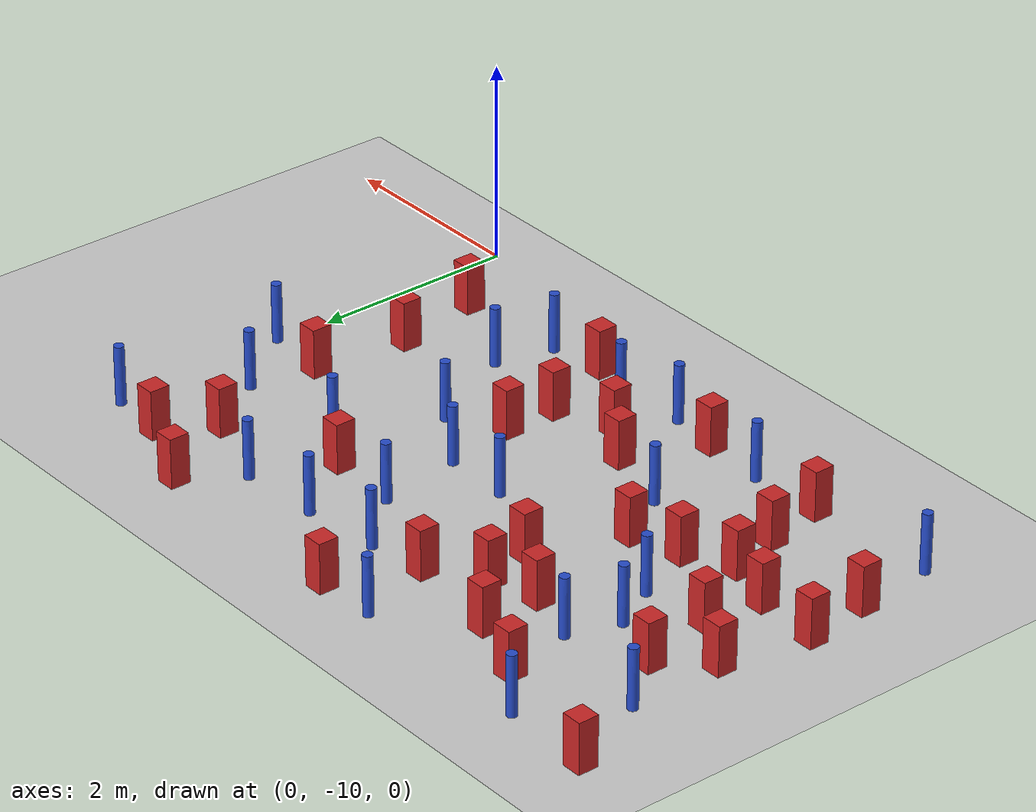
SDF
<sdf version="1.6">
 <world name="default">
  <model name="ground_plane">
   <static>1</static>
   <link name="link">
    <collision name="collision">
     <geometry><plane><normal>0 0 1</normal><size>100 100</size></plane></geometry>
     <surface><friction><ode><mu>100</mu><mu2>50</mu2></ode></friction></surface>
    </collision>
    <visual name="visual">
     <cast_shadows>0</cast_shadows>
     <geometry><plane><normal>0 0 1</normal><size>100 100</size></plane></geometry>
     <material>
      <ambient>1.0 1.0 1.0 1.0</ambient>
      <diffuse>0.8 0.8 0.8 1.0</diffuse>
      <specular>0.01 0.01 0.01 1.000000</specular>
     </material>
    </visual>
   </link>
  </model>
  <model name="pole_obstacle1">
   <static>true</static>
   <pose>-1.74383481891 -5.81777076691 -9.47619616065e-06 5.49618799737e-07 2.36310414061e-07 -1.550905348e-07</pose>
   <link name="link">
    <pose>0 0 0.3 0 -0 0</pose>
    <inertial>
     <mass>1</mass>
     <inertia><ixx>0.145833</ixx><ixy>0</ixy><ixz>0</ixz><iyy>0.145833</iyy><iyz>0</iyz><izz>0.125</izz></inertia>
    </inertial>
    <collision name="collision">
     <geometry><cylinder><radius>0.05</radius><length>.6</length></cylinder></geometry>
    </collision>
    <visual name="visual">
     <geometry><cylinder><radius>0.05</radius><length>.6</length></cylinder></geometry>
     <material>
      <script><name>Gazebo/Blue</name><uri>file://media/materials/scripts/gazebo.material</uri></script>
     </material>
    </visual>
   </link>
  </model>
  <model name="square_post_obstacle0">
   <static>true</static>
   <pose>-6.75557318525 -7.88863888471 -6.11067671241e-07 -5.50515727128e-06 -8.79689657224e-07 2.37013304536e-05</pose>
   <link name="link">
    <pose>0 0 0.25 0 -0 0</pose>
    <inertial>
     <mass>100</mass>
     <inertia>
      <ixx>0.166667</ixx>
      <ixy>0</ixy>
      <ixz>0</ixz>
      <iyy>0.166667</iyy>
      <iyz>0</iyz>
      <izz>0.166667</izz>
     </inertia>
    </inertial>
    <collision name="collision"><geometry><box><size>.2 .2 .5</size></box></geometry></collision>
    <visual name="visual">
     <geometry><box><size>.2 .2 .5</size></box></geometry>
     <material>
      <script><name>Gazebo/Red</name><uri>file://media/materials/scripts/gazebo.material</uri></script>
     </material>
    </visual>
   </link>
  </model>
  <model name="pole_obstacle13">
   <static>true</static>
   <pose>-2.6742493743 -7.34877524434 -9.47619616065e-06 5.49618799738e-07 2.3631041406e-07 -1.55090534801e-07</pose>
   <link name="link">
    <pose>0 0 0.3 0 -0 0</pose>
    <inertial>
     <mass>1</mass>
     <inertia><ixx>0.145833</ixx><ixy>0</ixy><ixz>0</ixz><iyy>0.145833</iyy><iyz>0</iyz><izz>0.125</izz></inertia>
    </inertial>
    <collision name="collision">
     <geometry><cylinder><radius>0.05</radius><length>.6</length></cylinder></geometry>
    </collision>
    <visual name="visual">
     <geometry><cylinder><radius>0.05</radius><length>.6</length></cylinder></geometry>
     <material>
      <script><name>Gazebo/Blue</name><uri>file://media/materials/scripts/gazebo.material</uri></script>
     </material>
    </visual>
   </link>
  </model>
  <model name="pole_obstacle17">
   <static>true</static>
   <pose>-6.03865940398 -5.28172877033 -9.47619616065e-06 5.49618799737e-07 2.36310414037e-07 -1.55090534814e-07</pose>
   <link name="link">
    <pose>0 0 0.3 0 -0 0</pose>
    <inertial>
     <mass>1</mass>
     <inertia><ixx>0.145833</ixx><ixy>0</ixy><ixz>0</ixz><iyy>0.145833</iyy><iyz>0</iyz><izz>0.125</izz></inertia>
    </inertial>
    <collision name="collision">
     <geometry><cylinder><radius>0.05</radius><length>.6</length></cylinder></geometry>
    </collision>
    <visual name="visual">
     <geometry><cylinder><radius>0.05</radius><length>.6</length></cylinder></geometry>
     <material>
      <script><name>Gazebo/Blue</name><uri>file://media/materials/scripts/gazebo.material</uri></script>
     </material>
    </visual>
   </link>
  </model>
  <model name="pole_obstacle19">
   <static>true</static>
   <pose>-2.04132399361 -7.76574243721 -9.47619616065e-06 5.49618799737e-07 2.36310414067e-07 -1.55090534796e-07</pose>
   <link name="link">
    <pose>0 0 0.3 0 -0 0</pose>
    <inertial>
     <mass>1</mass>
     <inertia><ixx>0.145833</ixx><ixy>0</ixy><ixz>0</ixz><iyy>0.145833</iyy><iyz>0</iyz><izz>0.125</izz></inertia>
    </inertial>
    <collision name="collision">
     <geometry><cylinder><radius>0.05</radius><length>.6</length></cylinder></geometry>
    </collision>
    <visual name="visual">
     <geometry><cylinder><radius>0.05</radius><length>.6</length></cylinder></geometry>
     <material>
      <script><name>Gazebo/Blue</name><uri>file://media/materials/scripts/gazebo.material</uri></script>
     </material>
    </visual>
   </link>
  </model>
  <model name="pole_obstacle27">
   <static>true</static>
   <pose>-6.57801317529 -9.34127298016 -9.47619616065e-06 5.49618799737e-07 2.36310414065e-07 -1.55090534796e-07</pose>
   <link name="link">
    <pose>0 0 0.3 0 -0 0</pose>
    <inertial>
     <mass>1</mass>
     <inertia><ixx>0.145833</ixx><ixy>0</ixy><ixz>0</ixz><iyy>0.145833</iyy><iyz>0</iyz><izz>0.125</izz></inertia>
    </inertial>
    <collision name="collision">
     <geometry><cylinder><radius>0.05</radius><length>.6</length></cylinder></geometry>
    </collision>
    <visual name="visual">
     <geometry><cylinder><radius>0.05</radius><length>.6</length></cylinder></geometry>
     <material>
      <script><name>Gazebo/Blue</name><uri>file://media/materials/scripts/gazebo.material</uri></script>
     </material>
    </visual>
   </link>
  </model>
  <model name="square_post_obstacle19">
   <static>true</static>
   <pose>-4.38879431666 -6.38480278484 -6.11067671241e-07 -5.50515727128e-06 -8.79689657224e-07 2.37013304536e-05</pose>
   <link name="link">
    <pose>0 0 0.25 0 -0 0</pose>
    <inertial>
     <mass>100</mass>
     <inertia>
      <ixx>0.166667</ixx>
      <ixy>0</ixy>
      <ixz>0</ixz>
      <iyy>0.166667</iyy>
      <iyz>0</iyz>
      <izz>0.166667</izz>
     </inertia>
    </inertial>
    <collision name="collision"><geometry><box><size>.2 .2 .5</size></box></geometry></collision>
    <visual name="visual">
     <geometry><box><size>.2 .2 .5</size></box></geometry>
     <material>
      <script><name>Gazebo/Red</name><uri>file://media/materials/scripts/gazebo.material</uri></script>
     </material>
    </visual>
   </link>
  </model>
  <model name="square_post_obstacle24">
   <static>true</static>
   <pose>-0.602056874065 -9.18775870328 -6.11067671241e-07 -5.50515727128e-06 -8.79689657224e-07 2.37013304536e-05</pose>
   <link name="link">
    <pose>0 0 0.25 0 -0 0</pose>
    <inertial>
     <mass>100</mass>
     <inertia>
      <ixx>0.166667</ixx>
      <ixy>0</ixy>
      <ixz>0</ixz>
      <iyy>0.166667</iyy>
      <iyz>0</iyz>
      <izz>0.166667</izz>
     </inertia>
    </inertial>
    <collision name="collision"><geometry><box><size>.2 .2 .5</size></box></geometry></collision>
    <visual name="visual">
     <geometry><box><size>.2 .2 .5</size></box></geometry>
     <material>
      <script><name>Gazebo/Red</name><uri>file://media/materials/scripts/gazebo.material</uri></script>
     </material>
    </visual>
   </link>
  </model>
  <model name="pole_obstacle33">
   <static>true</static>
   <pose>-4.1364872757 -5.28533609026 -9.47619616065e-06 5.49618799737e-07 2.36310414037e-07 -1.55090534814e-07</pose>
   <link name="link">
    <pose>0 0 0.3 0 -0 0</pose>
    <inertial>
     <mass>1</mass>
     <inertia><ixx>0.145833</ixx><ixy>0</ixy><ixz>0</ixz><iyy>0.145833</iyy><iyz>0</iyz><izz>0.125</izz></inertia>
    </inertial>
    <collision name="collision">
     <geometry><cylinder><radius>0.05</radius><length>.6</length></cylinder></geometry>
    </collision>
    <visual name="visual">
     <geometry><cylinder><radius>0.05</radius><length>.6</length></cylinder></geometry>
     <material>
      <script><name>Gazebo/Blue</name><uri>file://media/materials/scripts/gazebo.material</uri></script>
     </material>
    </visual>
   </link>
  </model>
  <model name="pole_obstacle35">
   <static>true</static>
   <pose>-5.42017262382 -6.34339641514 -9.47619616065e-06 5.49618799737e-07 2.36310414037e-07 -1.55090534814e-07</pose>
   <link name="link">
    <pose>0 0 0.3 0 -0 0</pose>
    <inertial>
     <mass>1</mass>
     <inertia><ixx>0.145833</ixx><ixy>0</ixy><ixz>0</ixz><iyy>0.145833</iyy><iyz>0</iyz><izz>0.125</izz></inertia>
    </inertial>
    <collision name="collision">
     <geometry><cylinder><radius>0.05</radius><length>.6</length></cylinder></geometry>
    </collision>
    <visual name="visual">
     <geometry><cylinder><radius>0.05</radius><length>.6</length></cylinder></geometry>
     <material>
      <script><name>Gazebo/Blue</name><uri>file://media/materials/scripts/gazebo.material</uri></script>
     </material>
    </visual>
   </link>
  </model>
  <model name="pole_obstacle42">
   <static>true</static>
   <pose>-3.34360579374 -7.33530990553 -9.4761961606e-06 5.49618799729e-07 2.36310414006e-07 -1.55090534822e-07</pose>
   <link name="link">
    <pose>0 0 0.3 0 -0 0</pose>
    <inertial>
     <mass>1</mass>
     <inertia><ixx>0.145833</ixx><ixy>0</ixy><ixz>0</ixz><iyy>0.145833</iyy><iyz>0</iyz><izz>0.125</izz></inertia>
    </inertial>
    <collision name="collision">
     <geometry><cylinder><radius>0.05</radius><length>.6</length></cylinder></geometry>
    </collision>
    <visual name="visual">
     <geometry><cylinder><radius>0.05</radius><length>.6</length></cylinder></geometry>
     <material>
      <script><name>Gazebo/Blue</name><uri>file://media/materials/scripts/gazebo.material</uri></script>
     </material>
    </visual>
   </link>
  </model>
  <model name="square_post_obstacle32">
   <static>true</static>
   <pose>-6.0216094515 -7.36212291697 -6.11067671241e-07 -5.50515727128e-06 -8.79689657224e-07 2.37013304536e-05</pose>
   <link name="link">
    <pose>0 0 0.25 0 -0 0</pose>
    <inertial>
     <mass>100</mass>
     <inertia>
      <ixx>0.166667</ixx>
      <ixy>0</ixy>
      <ixz>0</ixz>
      <iyy>0.166667</iyy>
      <iyz>0</iyz>
      <izz>0.166667</izz>
     </inertia>
    </inertial>
    <collision name="collision"><geometry><box><size>.2 .2 .5</size></box></geometry></collision>
    <visual name="visual">
     <geometry><box><size>.2 .2 .5</size></box></geometry>
     <material>
      <script><name>Gazebo/Red</name><uri>file://media/materials/scripts/gazebo.material</uri></script>
     </material>
    </visual>
   </link>
  </model>
  <model name="square_post_obstacle40">
   <static>true</static>
   <pose>-6.66335630523 -8.54796454242 -6.11067671241e-07 -5.50515727128e-06 -8.79689657224e-07 2.37013304536e-05</pose>
   <link name="link">
    <pose>0 0 0.25 0 -0 0</pose>
    <inertial>
     <mass>100</mass>
     <inertia>
      <ixx>0.166667</ixx>
      <ixy>0</ixy>
      <ixz>0</ixz>
      <iyy>0.166667</iyy>
      <iyz>0</iyz>
      <izz>0.166667</izz>
     </inertia>
    </inertial>
    <collision name="collision"><geometry><box><size>.2 .2 .5</size></box></geometry></collision>
    <visual name="visual">
     <geometry><box><size>.2 .2 .5</size></box></geometry>
     <material>
      <script><name>Gazebo/Red</name><uri>file://media/materials/scripts/gazebo.material</uri></script>
     </material>
    </visual>
   </link>
  </model>
  <model name="pole_obstacle54">
   <static>true</static>
   <pose>0.0282269037249 -7.44668861009 -9.47619616065e-06 5.49618799737e-07 2.36310414066e-07 -1.55090534797e-07</pose>
   <link name="link">
    <pose>0 0 0.3 0 -0 0</pose>
    <inertial>
     <mass>1</mass>
     <inertia><ixx>0.145833</ixx><ixy>0</ixy><ixz>0</ixz><iyy>0.145833</iyy><iyz>0</iyz><izz>0.125</izz></inertia>
    </inertial>
    <collision name="collision">
     <geometry><cylinder><radius>0.05</radius><length>.6</length></cylinder></geometry>
    </collision>
    <visual name="visual">
     <geometry><cylinder><radius>0.05</radius><length>.6</length></cylinder></geometry>
     <material>
      <script><name>Gazebo/Blue</name><uri>file://media/materials/scripts/gazebo.material</uri></script>
     </material>
    </visual>
   </link>
  </model>
  <model name="square_post_obstacle47">
   <static>true</static>
   <pose>-3.9117878996 -6.03753070838 -6.11067671241e-07 -5.50515727128e-06 -8.79689657224e-07 2.37013304536e-05</pose>
   <link name="link">
    <pose>0 0 0.25 0 -0 0</pose>
    <inertial>
     <mass>100</mass>
     <inertia>
      <ixx>0.166667</ixx>
      <ixy>0</ixy>
      <ixz>0</ixz>
      <iyy>0.166667</iyy>
      <iyz>0</iyz>
      <izz>0.166667</izz>
     </inertia>
    </inertial>
    <collision name="collision"><geometry><box><size>.2 .2 .5</size></box></geometry></collision>
    <visual name="visual">
     <geometry><box><size>.2 .2 .5</size></box></geometry>
     <material>
      <script><name>Gazebo/Red</name><uri>file://media/materials/scripts/gazebo.material</uri></script>
     </material>
    </visual>
   </link>
  </model>
  <model name="square_post_obstacle53">
   <static>true</static>
   <pose>-2.27572572303 -9.36772776273 -6.11067671241e-07 -5.50515727128e-06 -8.79689657224e-07 2.37013304536e-05</pose>
   <link name="link">
    <pose>0 0 0.25 0 -0 0</pose>
    <inertial>
     <mass>100</mass>
     <inertia>
      <ixx>0.166667</ixx>
      <ixy>0</ixy>
      <ixz>0</ixz>
      <iyy>0.166667</iyy>
      <iyz>0</iyz>
      <izz>0.166667</izz>
     </inertia>
    </inertial>
    <collision name="collision"><geometry><box><size>.2 .2 .5</size></box></geometry></collision>
    <visual name="visual">
     <geometry><box><size>.2 .2 .5</size></box></geometry>
     <material>
      <script><name>Gazebo/Red</name><uri>file://media/materials/scripts/gazebo.material</uri></script>
     </material>
    </visual>
   </link>
  </model>
  <model name="square_post_obstacle58">
   <static>true</static>
   <pose>-5.58530225095 -8.10684089101 -6.11067671241e-07 -5.50515727128e-06 -8.79689657224e-07 2.37013304536e-05</pose>
   <link name="link">
    <pose>0 0 0.25 0 -0 0</pose>
    <inertial>
     <mass>100</mass>
     <inertia>
      <ixx>0.166667</ixx>
      <ixy>0</ixy>
      <ixz>0</ixz>
      <iyy>0.166667</iyy>
      <iyz>0</iyz>
      <izz>0.166667</izz>
     </inertia>
    </inertial>
    <collision name="collision"><geometry><box><size>.2 .2 .5</size></box></geometry></collision>
    <visual name="visual">
     <geometry><box><size>.2 .2 .5</size></box></geometry>
     <material>
      <script><name>Gazebo/Red</name><uri>file://media/materials/scripts/gazebo.material</uri></script>
     </material>
    </visual>
   </link>
  </model>
  <model name="pole_obstacle69">
   <static>true</static>
   <pose>-1.70387934588 -9.2942486309 -9.47619616065e-06 5.49618799737e-07 2.36310414046e-07 -1.55090534809e-07</pose>
   <link name="link">
    <pose>0 0 0.3 0 -0 0</pose>
    <inertial>
     <mass>1</mass>
     <inertia><ixx>0.145833</ixx><ixy>0</ixy><ixz>0</ixz><iyy>0.145833</iyy><iyz>0</iyz><izz>0.125</izz></inertia>
    </inertial>
    <collision name="collision">
     <geometry><cylinder><radius>0.05</radius><length>.6</length></cylinder></geometry>
    </collision>
    <visual name="visual">
     <geometry><cylinder><radius>0.05</radius><length>.6</length></cylinder></geometry>
     <material>
      <script><name>Gazebo/Blue</name><uri>file://media/materials/scripts/gazebo.material</uri></script>
     </material>
    </visual>
   </link>
  </model>
  <model name="pole_obstacle70">
   <static>true</static>
   <pose>-0.500429418256 -6.75023106166 -9.47619616065e-06 5.49618799737e-07 2.36310414069e-07 -1.55090534794e-07</pose>
   <link name="link">
    <pose>0 0 0.3 0 -0 0</pose>
    <inertial>
     <mass>1</mass>
     <inertia><ixx>0.145833</ixx><ixy>0</ixy><ixz>0</ixz><iyy>0.145833</iyy><iyz>0</iyz><izz>0.125</izz></inertia>
    </inertial>
    <collision name="collision">
     <geometry><cylinder><radius>0.05</radius><length>.6</length></cylinder></geometry>
    </collision>
    <visual name="visual">
     <geometry><cylinder><radius>0.05</radius><length>.6</length></cylinder></geometry>
     <material>
      <script><name>Gazebo/Blue</name><uri>file://media/materials/scripts/gazebo.material</uri></script>
     </material>
    </visual>
   </link>
  </model>
  <model name="square_post_obstacle63">
   <static>true</static>
   <pose>-6.19351420063 -6.60983854267 -6.11067671241e-07 -5.50515727128e-06 -8.79689657224e-07 2.37013304536e-05</pose>
   <link name="link">
    <pose>0 0 0.25 0 -0 0</pose>
    <inertial>
     <mass>100</mass>
     <inertia>
      <ixx>0.166667</ixx>
      <ixy>0</ixy>
      <ixz>0</ixz>
      <iyy>0.166667</iyy>
      <iyz>0</iyz>
      <izz>0.166667</izz>
     </inertia>
    </inertial>
    <collision name="collision"><geometry><box><size>.2 .2 .5</size></box></geometry></collision>
    <visual name="visual">
     <geometry><box><size>.2 .2 .5</size></box></geometry>
     <material>
      <script><name>Gazebo/Red</name><uri>file://media/materials/scripts/gazebo.material</uri></script>
     </material>
    </visual>
   </link>
  </model>
  <model name="pole_obstacle79">
   <static>true</static>
   <pose>-1.56530582045 -8.71790837969 -9.47619616065e-06 5.49618799737e-07 2.36310414046e-07 -1.55090534809e-07</pose>
   <link name="link">
    <pose>0 0 0.3 0 -0 0</pose>
    <inertial>
     <mass>1</mass>
     <inertia><ixx>0.145833</ixx><ixy>0</ixy><ixz>0</ixz><iyy>0.145833</iyy><iyz>0</iyz><izz>0.125</izz></inertia>
    </inertial>
    <collision name="collision">
     <geometry><cylinder><radius>0.05</radius><length>.6</length></cylinder></geometry>
    </collision>
    <visual name="visual">
     <geometry><cylinder><radius>0.05</radius><length>.6</length></cylinder></geometry>
     <material>
      <script><name>Gazebo/Blue</name><uri>file://media/materials/scripts/gazebo.material</uri></script>
     </material>
    </visual>
   </link>
  </model>
  <model name="square_post_obstacle67">
   <static>true</static>
   <pose>-3.91425022585 -9.26576423874 -6.11067671241e-07 -5.50515727128e-06 -8.79689657224e-07 2.37013304536e-05</pose>
   <link name="link">
    <pose>0 0 0.25 0 -0 0</pose>
    <inertial>
     <mass>100</mass>
     <inertia>
      <ixx>0.166667</ixx>
      <ixy>0</ixy>
      <ixz>0</ixz>
      <iyy>0.166667</iyy>
      <iyz>0</iyz>
      <izz>0.166667</izz>
     </inertia>
    </inertial>
    <collision name="collision"><geometry><box><size>.2 .2 .5</size></box></geometry></collision>
    <visual name="visual">
     <geometry><box><size>.2 .2 .5</size></box></geometry>
     <material>
      <script><name>Gazebo/Red</name><uri>file://media/materials/scripts/gazebo.material</uri></script>
     </material>
    </visual>
   </link>
  </model>
  <model name="pole_obstacle84">
   <static>true</static>
   <pose>-4.28850860119 -8.28975359966 -9.47619616065e-06 5.49618799737e-07 2.36310414065e-07 -1.55090534796e-07</pose>
   <link name="link">
    <pose>0 0 0.3 0 -0 0</pose>
    <inertial>
     <mass>1</mass>
     <inertia><ixx>0.145833</ixx><ixy>0</ixy><ixz>0</ixz><iyy>0.145833</iyy><iyz>0</iyz><izz>0.125</izz></inertia>
    </inertial>
    <collision name="collision">
     <geometry><cylinder><radius>0.05</radius><length>.6</length></cylinder></geometry>
    </collision>
    <visual name="visual">
     <geometry><cylinder><radius>0.05</radius><length>.6</length></cylinder></geometry>
     <material>
      <script><name>Gazebo/Blue</name><uri>file://media/materials/scripts/gazebo.material</uri></script>
     </material>
    </visual>
   </link>
  </model>
  <model name="square_post_obstacle73">
   <static>true</static>
   <pose>-4.91823500977 -5.89845408757 -6.11067671241e-07 -5.50515727128e-06 -8.79689657224e-07 2.37013304536e-05</pose>
   <link name="link">
    <pose>0 0 0.25 0 -0 0</pose>
    <inertial>
     <mass>100</mass>
     <inertia>
      <ixx>0.166667</ixx>
      <ixy>0</ixy>
      <ixz>0</ixz>
      <iyy>0.166667</iyy>
      <iyz>0</iyz>
      <izz>0.166667</izz>
     </inertia>
    </inertial>
    <collision name="collision"><geometry><box><size>.2 .2 .5</size></box></geometry></collision>
    <visual name="visual">
     <geometry><box><size>.2 .2 .5</size></box></geometry>
     <material>
      <script><name>Gazebo/Red</name><uri>file://media/materials/scripts/gazebo.material</uri></script>
     </material>
    </visual>
   </link>
  </model>
  <model name="square_post_obstacle82">
   <static>true</static>
   <pose>-3.58208955156 -8.49218098409 -6.11067671241e-07 -5.50515727128e-06 -8.79689657224e-07 2.37013304536e-05</pose>
   <link name="link">
    <pose>0 0 0.25 0 -0 0</pose>
    <inertial>
     <mass>100</mass>
     <inertia>
      <ixx>0.166667</ixx>
      <ixy>0</ixy>
      <ixz>0</ixz>
      <iyy>0.166667</iyy>
      <iyz>0</iyz>
      <izz>0.166667</izz>
     </inertia>
    </inertial>
    <collision name="collision"><geometry><box><size>.2 .2 .5</size></box></geometry></collision>
    <visual name="visual">
     <geometry><box><size>.2 .2 .5</size></box></geometry>
     <material>
      <script><name>Gazebo/Red</name><uri>file://media/materials/scripts/gazebo.material</uri></script>
     </material>
    </visual>
   </link>
  </model>
  <model name="square_post_obstacle85">
   <static>true</static>
   <pose>-6.58935081529 -7.02460089966 -6.11067671241e-07 -5.50515727128e-06 -8.79689657224e-07 2.37013304536e-05</pose>
   <link name="link">
    <pose>0 0 0.25 0 -0 0</pose>
    <inertial>
     <mass>100</mass>
     <inertia>
      <ixx>0.166667</ixx>
      <ixy>0</ixy>
      <ixz>0</ixz>
      <iyy>0.166667</iyy>
      <iyz>0</iyz>
      <izz>0.166667</izz>
     </inertia>
    </inertial>
    <collision name="collision"><geometry><box><size>.2 .2 .5</size></box></geometry></collision>
    <visual name="visual">
     <geometry><box><size>.2 .2 .5</size></box></geometry>
     <material>
      <script><name>Gazebo/Red</name><uri>file://media/materials/scripts/gazebo.material</uri></script>
     </material>
    </visual>
   </link>
  </model>
  <model name="pole_obstacle98">
   <static>true</static>
   <pose>-5.58505409802 -6.84187142953 -9.47619616065e-06 5.49618799737e-07 2.36310414037e-07 -1.55090534814e-07</pose>
   <link name="link">
    <pose>0 0 0.3 0 -0 0</pose>
    <inertial>
     <mass>1</mass>
     <inertia><ixx>0.145833</ixx><ixy>0</ixy><ixz>0</ixz><iyy>0.145833</iyy><iyz>0</iyz><izz>0.125</izz></inertia>
    </inertial>
    <collision name="collision">
     <geometry><cylinder><radius>0.05</radius><length>.6</length></cylinder></geometry>
    </collision>
    <visual name="visual">
     <geometry><cylinder><radius>0.05</radius><length>.6</length></cylinder></geometry>
     <material>
      <script><name>Gazebo/Blue</name><uri>file://media/materials/scripts/gazebo.material</uri></script>
     </material>
    </visual>
   </link>
  </model>
  <model name="square_post_obstacle97">
   <static>true</static>
   <pose>-4.60888270733 -7.74957748702 -6.11067671241e-07 -5.50515727128e-06 -8.79689657224e-07 2.37013304536e-05</pose>
   <link name="link">
    <pose>0 0 0.25 0 -0 0</pose>
    <inertial>
     <mass>100</mass>
     <inertia>
      <ixx>0.166667</ixx>
      <ixy>0</ixy>
      <ixz>0</ixz>
      <iyy>0.166667</iyy>
      <iyz>0</iyz>
      <izz>0.166667</izz>
     </inertia>
    </inertial>
    <collision name="collision"><geometry><box><size>.2 .2 .5</size></box></geometry></collision>
    <visual name="visual">
     <geometry><box><size>.2 .2 .5</size></box></geometry>
     <material>
      <script><name>Gazebo/Red</name><uri>file://media/materials/scripts/gazebo.material</uri></script>
     </material>
    </visual>
   </link>
  </model>
  <model name="pole_obstacle102">
   <static>true</static>
   <pose>-1.6128297447 -6.83994711278 -9.47619616065e-06 5.49618799737e-07 2.36310414061e-07 -1.550905348e-07</pose>
   <link name="link">
    <pose>0 0 0.3 0 -0 0</pose>
    <inertial>
     <mass>1</mass>
     <inertia><ixx>0.145833</ixx><ixy>0</ixy><ixz>0</ixz><iyy>0.145833</iyy><iyz>0</iyz><izz>0.125</izz></inertia>
    </inertial>
    <collision name="collision">
     <geometry><cylinder><radius>0.05</radius><length>.6</length></cylinder></geometry>
    </collision>
    <visual name="visual">
     <geometry><cylinder><radius>0.05</radius><length>.6</length></cylinder></geometry>
     <material>
      <script><name>Gazebo/Blue</name><uri>file://media/materials/scripts/gazebo.material</uri></script>
     </material>
    </visual>
   </link>
  </model>
  <model name="square_post_obstacle98">
   <static>true</static>
   <pose>-1.38042814501 -5.27601097701 -6.11067671241e-07 -5.50515727128e-06 -8.79689657224e-07 2.37013304536e-05</pose>
   <link name="link">
    <pose>0 0 0.25 0 -0 0</pose>
    <inertial>
     <mass>100</mass>
     <inertia>
      <ixx>0.166667</ixx>
      <ixy>0</ixy>
      <ixz>0</ixz>
      <iyy>0.166667</iyy>
      <iyz>0</iyz>
      <izz>0.166667</izz>
     </inertia>
    </inertial>
    <collision name="collision"><geometry><box><size>.2 .2 .5</size></box></geometry></collision>
    <visual name="visual">
     <geometry><box><size>.2 .2 .5</size></box></geometry>
     <material>
      <script><name>Gazebo/Red</name><uri>file://media/materials/scripts/gazebo.material</uri></script>
     </material>
    </visual>
   </link>
  </model>
  <model name="square_post_obstacle100">
   <static>true</static>
   <pose>-2.5749267627 -8.57938931254 -6.11067671241e-07 -5.50515727128e-06 -8.79689657224e-07 2.37013304536e-05</pose>
   <link name="link">
    <pose>0 0 0.25 0 -0 0</pose>
    <inertial>
     <mass>100</mass>
     <inertia>
      <ixx>0.166667</ixx>
      <ixy>0</ixy>
      <ixz>0</ixz>
      <iyy>0.166667</iyy>
      <iyz>0</iyz>
      <izz>0.166667</izz>
     </inertia>
    </inertial>
    <collision name="collision"><geometry><box><size>.2 .2 .5</size></box></geometry></collision>
    <visual name="visual">
     <geometry><box><size>.2 .2 .5</size></box></geometry>
     <material>
      <script><name>Gazebo/Red</name><uri>file://media/materials/scripts/gazebo.material</uri></script>
     </material>
    </visual>
   </link>
  </model>
  <model name="square_post_obstacle104">
   <static>true</static>
   <pose>-0.765384815215 -8.31606438511 -6.11067671241e-07 -5.50515727128e-06 -8.79689657224e-07 2.37013304536e-05</pose>
   <link name="link">
    <pose>0 0 0.25 0 -0 0</pose>
    <inertial>
     <mass>100</mass>
     <inertia>
      <ixx>0.166667</ixx>
      <ixy>0</ixy>
      <ixz>0</ixz>
      <iyy>0.166667</iyy>
      <iyz>0</iyz>
      <izz>0.166667</izz>
     </inertia>
    </inertial>
    <collision name="collision"><geometry><box><size>.2 .2 .5</size></box></geometry></collision>
    <visual name="visual">
     <geometry><box><size>.2 .2 .5</size></box></geometry>
     <material>
      <script><name>Gazebo/Red</name><uri>file://media/materials/scripts/gazebo.material</uri></script>
     </material>
    </visual>
   </link>
  </model>
  <model name="square_post_obstacle108">
   <static>true</static>
   <pose>-3.15474063763 -8.79622871209 -6.11067671241e-07 -5.50515727128e-06 -8.79689657224e-07 2.37013304536e-05</pose>
   <link name="link">
    <pose>0 0 0.25 0 -0 0</pose>
    <inertial>
     <mass>100</mass>
     <inertia>
      <ixx>0.166667</ixx>
      <ixy>0</ixy>
      <ixz>0</ixz>
      <iyy>0.166667</iyy>
      <iyz>0</iyz>
      <izz>0.166667</izz>
     </inertia>
    </inertial>
    <collision name="collision"><geometry><box><size>.2 .2 .5</size></box></geometry></collision>
    <visual name="visual">
     <geometry><box><size>.2 .2 .5</size></box></geometry>
     <material>
      <script><name>Gazebo/Red</name><uri>file://media/materials/scripts/gazebo.material</uri></script>
     </material>
    </visual>
   </link>
  </model>
  <model name="square_post_obstacle116">
   <static>true</static>
   <pose>-4.88147173072 -6.50576293292 -6.11067671241e-07 -5.50515727128e-06 -8.79689657224e-07 2.37013304536e-05</pose>
   <link name="link">
    <pose>0 0 0.25 0 -0 0</pose>
    <inertial>
     <mass>100</mass>
     <inertia>
      <ixx>0.166667</ixx>
      <ixy>0</ixy>
      <ixz>0</ixz>
      <iyy>0.166667</iyy>
      <iyz>0</iyz>
      <izz>0.166667</izz>
     </inertia>
    </inertial>
    <collision name="collision"><geometry><box><size>.2 .2 .5</size></box></geometry></collision>
    <visual name="visual">
     <geometry><box><size>.2 .2 .5</size></box></geometry>
     <material>
      <script><name>Gazebo/Red</name><uri>file://media/materials/scripts/gazebo.material</uri></script>
     </material>
    </visual>
   </link>
  </model>
  <model name="square_post_obstacle121">
   <static>true</static>
   <pose>-5.41338945913 -8.64779416855 -6.11067671241e-07 -5.50515727128e-06 -8.79689657224e-07 2.37013304536e-05</pose>
   <link name="link">
    <pose>0 0 0.25 0 -0 0</pose>
    <inertial>
     <mass>100</mass>
     <inertia>
      <ixx>0.166667</ixx>
      <ixy>0</ixy>
      <ixz>0</ixz>
      <iyy>0.166667</iyy>
      <iyz>0</iyz>
      <izz>0.166667</izz>
     </inertia>
    </inertial>
    <collision name="collision"><geometry><box><size>.2 .2 .5</size></box></geometry></collision>
    <visual name="visual">
     <geometry><box><size>.2 .2 .5</size></box></geometry>
     <material>
      <script><name>Gazebo/Red</name><uri>file://media/materials/scripts/gazebo.material</uri></script>
     </material>
    </visual>
   </link>
  </model>
  <model name="pole_obstacle125">
   <static>true</static>
   <pose>-4.54910361811 -9.22731254168 -9.47619616065e-06 5.49618799737e-07 2.36310414065e-07 -1.55090534796e-07</pose>
   <link name="link">
    <pose>0 0 0.3 0 -0 0</pose>
    <inertial>
     <mass>1</mass>
     <inertia><ixx>0.145833</ixx><ixy>0</ixy><ixz>0</ixz><iyy>0.145833</iyy><iyz>0</iyz><izz>0.125</izz></inertia>
    </inertial>
    <collision name="collision">
     <geometry><cylinder><radius>0.05</radius><length>.6</length></cylinder></geometry>
    </collision>
    <visual name="visual">
     <geometry><cylinder><radius>0.05</radius><length>.6</length></cylinder></geometry>
     <material>
      <script><name>Gazebo/Blue</name><uri>file://media/materials/scripts/gazebo.material</uri></script>
     </material>
    </visual>
   </link>
  </model>
  <model name="square_post_obstacle127">
   <static>true</static>
   <pose>-0.608836815724 -5.61972913269 -6.11067671241e-07 -5.50515727128e-06 -8.79689657224e-07 2.37013304536e-05</pose>
   <link name="link">
    <pose>0 0 0.25 0 -0 0</pose>
    <inertial>
     <mass>100</mass>
     <inertia>
      <ixx>0.166667</ixx>
      <ixy>0</ixy>
      <ixz>0</ixz>
      <iyy>0.166667</iyy>
      <iyz>0</iyz>
      <izz>0.166667</izz>
     </inertia>
    </inertial>
    <collision name="collision"><geometry><box><size>.2 .2 .5</size></box></geometry></collision>
    <visual name="visual">
     <geometry><box><size>.2 .2 .5</size></box></geometry>
     <material>
      <script><name>Gazebo/Red</name><uri>file://media/materials/scripts/gazebo.material</uri></script>
     </material>
    </visual>
   </link>
  </model>
  <model name="square_post_obstacle131">
   <static>true</static>
   <pose>-3.54200317447 -5.25582887236 -6.11067671241e-07 -5.50515727128e-06 -8.79689657224e-07 2.37013304536e-05</pose>
   <link name="link">
    <pose>0 0 0.25 0 -0 0</pose>
    <inertial>
     <mass>100</mass>
     <inertia>
      <ixx>0.166667</ixx>
      <ixy>0</ixy>
      <ixz>0</ixz>
      <iyy>0.166667</iyy>
      <iyz>0</iyz>
      <izz>0.166667</izz>
     </inertia>
    </inertial>
    <collision name="collision"><geometry><box><size>.2 .2 .5</size></box></geometry></collision>
    <visual name="visual">
     <geometry><box><size>.2 .2 .5</size></box></geometry>
     <material>
      <script><name>Gazebo/Red</name><uri>file://media/materials/scripts/gazebo.material</uri></script>
     </material>
    </visual>
   </link>
  </model>
  <model name="pole_obstacle144">
   <static>true</static>
   <pose>-2.80756347346 -6.50734434371 -9.47619616065e-06 5.49618799738e-07 2.3631041406e-07 -1.55090534801e-07</pose>
   <link name="link">
    <pose>0 0 0.3 0 -0 0</pose>
    <inertial>
     <mass>1</mass>
     <inertia><ixx>0.145833</ixx><ixy>0</ixy><ixz>0</ixz><iyy>0.145833</iyy><iyz>0</iyz><izz>0.125</izz></inertia>
    </inertial>
    <collision name="collision">
     <geometry><cylinder><radius>0.05</radius><length>.6</length></cylinder></geometry>
    </collision>
    <visual name="visual">
     <geometry><cylinder><radius>0.05</radius><length>.6</length></cylinder></geometry>
     <material>
      <script><name>Gazebo/Blue</name><uri>file://media/materials/scripts/gazebo.material</uri></script>
     </material>
    </visual>
   </link>
  </model>
  <model name="pole_obstacle150">
   <static>true</static>
   <pose>-6.58110789222 -6.10243843226 -9.47619616065e-06 5.49618799737e-07 2.36310414037e-07 -1.55090534814e-07</pose>
   <link name="link">
    <pose>0 0 0.3 0 -0 0</pose>
    <inertial>
     <mass>1</mass>
     <inertia><ixx>0.145833</ixx><ixy>0</ixy><ixz>0</ixz><iyy>0.145833</iyy><iyz>0</iyz><izz>0.125</izz></inertia>
    </inertial>
    <collision name="collision">
     <geometry><cylinder><radius>0.05</radius><length>.6</length></cylinder></geometry>
    </collision>
    <visual name="visual">
     <geometry><cylinder><radius>0.05</radius><length>.6</length></cylinder></geometry>
     <material>
      <script><name>Gazebo/Blue</name><uri>file://media/materials/scripts/gazebo.material</uri></script>
     </material>
    </visual>
   </link>
  </model>
  <model name="square_post_obstacle146">
   <static>true</static>
   <pose>-2.09386987222 -6.54110103499 -6.11067671241e-07 -5.50515727128e-06 -8.79689657224e-07 2.37013304536e-05</pose>
   <link name="link">
    <pose>0 0 0.25 0 -0 0</pose>
    <inertial>
     <mass>100</mass>
     <inertia>
      <ixx>0.166667</ixx>
      <ixy>0</ixy>
      <ixz>0</ixz>
      <iyy>0.166667</iyy>
      <iyz>0</iyz>
      <izz>0.166667</izz>
     </inertia>
    </inertial>
    <collision name="collision"><geometry><box><size>.2 .2 .5</size></box></geometry></collision>
    <visual name="visual">
     <geometry><box><size>.2 .2 .5</size></box></geometry>
     <material>
      <script><name>Gazebo/Red</name><uri>file://media/materials/scripts/gazebo.material</uri></script>
     </material>
    </visual>
   </link>
  </model>
  <model name="square_post_obstacle151">
   <static>true</static>
   <pose>-5.29967369065 -9.24858685416 -6.11067671241e-07 -5.50515727128e-06 -8.79689657224e-07 2.37013304536e-05</pose>
   <link name="link">
    <pose>0 0 0.25 0 -0 0</pose>
    <inertial>
     <mass>100</mass>
     <inertia>
      <ixx>0.166667</ixx>
      <ixy>0</ixy>
      <ixz>0</ixz>
      <iyy>0.166667</iyy>
      <iyz>0</iyz>
      <izz>0.166667</izz>
     </inertia>
    </inertial>
    <collision name="collision"><geometry><box><size>.2 .2 .5</size></box></geometry></collision>
    <visual name="visual">
     <geometry><box><size>.2 .2 .5</size></box></geometry>
     <material>
      <script><name>Gazebo/Red</name><uri>file://media/materials/scripts/gazebo.material</uri></script>
     </material>
    </visual>
   </link>
  </model>
  <model name="square_post_obstacle165">
   <static>true</static>
   <pose>-6.93995744981 -5.25354420144 -6.11067671241e-07 -5.50515727128e-06 -8.79689657224e-07 2.37013304536e-05</pose>
   <link name="link">
    <pose>0 0 0.25 0 -0 0</pose>
    <inertial>
     <mass>100</mass>
     <inertia>
      <ixx>0.166667</ixx>
      <ixy>0</ixy>
      <ixz>0</ixz>
      <iyy>0.166667</iyy>
      <iyz>0</iyz>
      <izz>0.166667</izz>
     </inertia>
    </inertial>
    <collision name="collision"><geometry><box><size>.2 .2 .5</size></box></geometry></collision>
    <visual name="visual">
     <geometry><box><size>.2 .2 .5</size></box></geometry>
     <material>
      <script><name>Gazebo/Red</name><uri>file://media/materials/scripts/gazebo.material</uri></script>
     </material>
    </visual>
   </link>
  </model>
  <model name="square_post_obstacle166">
   <static>true</static>
   <pose>-4.25629316514 -6.88414347145 -6.11067671241e-07 -5.50515727128e-06 -8.79689657224e-07 2.37013304536e-05</pose>
   <link name="link">
    <pose>0 0 0.25 0 -0 0</pose>
    <inertial>
     <mass>100</mass>
     <inertia>
      <ixx>0.166667</ixx>
      <ixy>0</ixy>
      <ixz>0</ixz>
      <iyy>0.166667</iyy>
      <iyz>0</iyz>
      <izz>0.166667</izz>
     </inertia>
    </inertial>
    <collision name="collision"><geometry><box><size>.2 .2 .5</size></box></geometry></collision>
    <visual name="visual">
     <geometry><box><size>.2 .2 .5</size></box></geometry>
     <material>
      <script><name>Gazebo/Red</name><uri>file://media/materials/scripts/gazebo.material</uri></script>
     </material>
    </visual>
   </link>
  </model>
  <model name="pole_obstacle173">
   <static>true</static>
   <pose>-3.31720756963 -5.95549130619 -9.47619616065e-06 5.49618799738e-07 2.3631041406e-07 -1.55090534801e-07</pose>
   <link name="link">
    <pose>0 0 0.3 0 -0 0</pose>
    <inertial>
     <mass>1</mass>
     <inertia><ixx>0.145833</ixx><ixy>0</ixy><ixz>0</ixz><iyy>0.145833</iyy><iyz>0</iyz><izz>0.125</izz></inertia>
    </inertial>
    <collision name="collision">
     <geometry><cylinder><radius>0.05</radius><length>.6</length></cylinder></geometry>
    </collision>
    <visual name="visual">
     <geometry><cylinder><radius>0.05</radius><length>.6</length></cylinder></geometry>
     <material>
      <script><name>Gazebo/Blue</name><uri>file://media/materials/scripts/gazebo.material</uri></script>
     </material>
    </visual>
   </link>
  </model>
  <model name="square_post_obstacle172">
   <static>true</static>
   <pose>-5.57432542175 -5.64469935351 -6.11067671241e-07 -5.50515727128e-06 -8.79689657224e-07 2.37013304536e-05</pose>
   <link name="link">
    <pose>0 0 0.25 0 -0 0</pose>
    <inertial>
     <mass>100</mass>
     <inertia>
      <ixx>0.166667</ixx>
      <ixy>0</ixy>
      <ixz>0</ixz>
      <iyy>0.166667</iyy>
      <iyz>0</iyz>
      <izz>0.166667</izz>
     </inertia>
    </inertial>
    <collision name="collision"><geometry><box><size>.2 .2 .5</size></box></geometry></collision>
    <visual name="visual">
     <geometry><box><size>.2 .2 .5</size></box></geometry>
     <material>
      <script><name>Gazebo/Red</name><uri>file://media/materials/scripts/gazebo.material</uri></script>
     </material>
    </visual>
   </link>
  </model>
  <model name="square_post_obstacle190">
   <static>true</static>
   <pose>-5.11580749086 -7.88383139919 -6.11067671241e-07 -5.50515727128e-06 -8.79689657224e-07 2.37013304536e-05</pose>
   <link name="link">
    <pose>0 0 0.25 0 -0 0</pose>
    <inertial>
     <mass>100</mass>
     <inertia>
      <ixx>0.166667</ixx>
      <ixy>0</ixy>
      <ixz>0</ixz>
      <iyy>0.166667</iyy>
      <iyz>0</iyz>
      <izz>0.166667</izz>
     </inertia>
    </inertial>
    <collision name="collision"><geometry><box><size>.2 .2 .5</size></box></geometry></collision>
    <visual name="visual">
     <geometry><box><size>.2 .2 .5</size></box></geometry>
     <material>
      <script><name>Gazebo/Red</name><uri>file://media/materials/scripts/gazebo.material</uri></script>
     </material>
    </visual>
   </link>
  </model>
  <model name="square_post_obstacle192">
   <static>true</static>
   <pose>-0.949532917964 -6.11269270318 -6.11067671241e-07 -5.50515727128e-06 -8.79689657224e-07 2.37013304536e-05</pose>
   <link name="link">
    <pose>0 0 0.25 0 -0 0</pose>
    <inertial>
     <mass>100</mass>
     <inertia>
      <ixx>0.166667</ixx>
      <ixy>0</ixy>
      <ixz>0</ixz>
      <iyy>0.166667</iyy>
      <iyz>0</iyz>
      <izz>0.166667</izz>
     </inertia>
    </inertial>
    <collision name="collision"><geometry><box><size>.2 .2 .5</size></box></geometry></collision>
    <visual name="visual">
     <geometry><box><size>.2 .2 .5</size></box></geometry>
     <material>
      <script><name>Gazebo/Red</name><uri>file://media/materials/scripts/gazebo.material</uri></script>
     </material>
    </visual>
   </link>
  </model>
  <model name="square_post_obstacle195">
   <static>true</static>
   <pose>-2.56837038632 -8.05732383166 -6.11067671241e-07 -5.50515727128e-06 -8.79689657224e-07 2.37013304536e-05</pose>
   <link name="link">
    <pose>0 0 0.25 0 -0 0</pose>
    <inertial>
     <mass>100</mass>
     <inertia>
      <ixx>0.166667</ixx>
      <ixy>0</ixy>
      <ixz>0</ixz>
      <iyy>0.166667</iyy>
      <iyz>0</iyz>
      <izz>0.166667</izz>
     </inertia>
    </inertial>
    <collision name="collision"><geometry><box><size>.2 .2 .5</size></box></geometry></collision>
    <visual name="visual">
     <geometry><box><size>.2 .2 .5</size></box></geometry>
     <material>
      <script><name>Gazebo/Red</name><uri>file://media/materials/scripts/gazebo.material</uri></script>
     </material>
    </visual>
   </link>
  </model>
  <model name="square_post_obstacle202">
   <static>true</static>
   <pose>-6.1008844145 -7.92830562629 -6.11067671241e-07 -5.50515727128e-06 -8.79689657224e-07 2.37013304536e-05</pose>
   <link name="link">
    <pose>0 0 0.25 0 -0 0</pose>
    <inertial>
     <mass>100</mass>
     <inertia>
      <ixx>0.166667</ixx>
      <ixy>0</ixy>
      <ixz>0</ixz>
      <iyy>0.166667</iyy>
      <iyz>0</iyz>
      <izz>0.166667</izz>
     </inertia>
    </inertial>
    <collision name="collision"><geometry><box><size>.2 .2 .5</size></box></geometry></collision>
    <visual name="visual">
     <geometry><box><size>.2 .2 .5</size></box></geometry>
     <material>
      <script><name>Gazebo/Red</name><uri>file://media/materials/scripts/gazebo.material</uri></script>
     </material>
    </visual>
   </link>
  </model>
  <model name="pole_obstacle203">
   <static>true</static>
   <pose>-2.54523851953 -5.87468348479 -9.47619616065e-06 5.49618799738e-07 2.3631041406e-07 -1.55090534801e-07</pose>
   <link name="link">
    <pose>0 0 0.3 0 -0 0</pose>
    <inertial>
     <mass>1</mass>
     <inertia><ixx>0.145833</ixx><ixy>0</ixy><ixz>0</ixz><iyy>0.145833</iyy><iyz>0</iyz><izz>0.125</izz></inertia>
    </inertial>
    <collision name="collision">
     <geometry><cylinder><radius>0.05</radius><length>.6</length></cylinder></geometry>
    </collision>
    <visual name="visual">
     <geometry><cylinder><radius>0.05</radius><length>.6</length></cylinder></geometry>
     <material>
      <script><name>Gazebo/Blue</name><uri>file://media/materials/scripts/gazebo.material</uri></script>
     </material>
    </visual>
   </link>
  </model>
  <model name="pole_obstacle205">
   <static>true</static>
   <pose>-3.37727892168 -9.34496569993 -9.4761961606e-06 5.49618799729e-07 2.36310414e-07 -1.55090534824e-07</pose>
   <link name="link">
    <pose>0 0 0.3 0 -0 0</pose>
    <inertial>
     <mass>1</mass>
     <inertia><ixx>0.145833</ixx><ixy>0</ixy><ixz>0</ixz><iyy>0.145833</iyy><iyz>0</iyz><izz>0.125</izz></inertia>
    </inertial>
    <collision name="collision">
     <geometry><cylinder><radius>0.05</radius><length>.6</length></cylinder></geometry>
    </collision>
    <visual name="visual">
     <geometry><cylinder><radius>0.05</radius><length>.6</length></cylinder></geometry>
     <material>
      <script><name>Gazebo/Blue</name><uri>file://media/materials/scripts/gazebo.material</uri></script>
     </material>
    </visual>
   </link>
  </model>
  <model name="pole_obstacle208">
   <static>true</static>
   <pose>-2.75371957447 -9.20115361895 -9.4761961606e-06 5.49618799729e-07 2.36310414e-07 -1.55090534824e-07</pose>
   <link name="link">
    <pose>0 0 0.3 0 -0 0</pose>
    <inertial>
     <mass>1</mass>
     <inertia><ixx>0.145833</ixx><ixy>0</ixy><ixz>0</ixz><iyy>0.145833</iyy><iyz>0</iyz><izz>0.125</izz></inertia>
    </inertial>
    <collision name="collision">
     <geometry><cylinder><radius>0.05</radius><length>.6</length></cylinder></geometry>
    </collision>
    <visual name="visual">
     <geometry><cylinder><radius>0.05</radius><length>.6</length></cylinder></geometry>
     <material>
      <script><name>Gazebo/Blue</name><uri>file://media/materials/scripts/gazebo.material</uri></script>
     </material>
    </visual>
   </link>
  </model>
  <model name="square_post_obstacle207">
   <static>true</static>
   <pose>-0.646293944156 -7.38169602509 -6.11067671241e-07 -5.50515727128e-06 -8.79689657224e-07 2.37013304536e-05</pose>
   <link name="link">
    <pose>0 0 0.25 0 -0 0</pose>
    <inertial>
     <mass>100</mass>
     <inertia>
      <ixx>0.166667</ixx>
      <ixy>0</ixy>
      <ixz>0</ixz>
      <iyy>0.166667</iyy>
      <iyz>0</iyz>
      <izz>0.166667</izz>
     </inertia>
    </inertial>
    <collision name="collision"><geometry><box><size>.2 .2 .5</size></box></geometry></collision>
    <visual name="visual">
     <geometry><box><size>.2 .2 .5</size></box></geometry>
     <material>
      <script><name>Gazebo/Red</name><uri>file://media/materials/scripts/gazebo.material</uri></script>
     </material>
    </visual>
   </link>
  </model>
  <model name="pole_obstacle216">
   <static>true</static>
   <pose>-5.3502734737 -7.29235387853 -9.47619616065e-06 5.49618799737e-07 2.36310414037e-07 -1.55090534814e-07</pose>
   <link name="link">
    <pose>0 0 0.3 0 -0 0</pose>
    <inertial>
     <mass>1</mass>
     <inertia><ixx>0.145833</ixx><ixy>0</ixy><ixz>0</ixz><iyy>0.145833</iyy><iyz>0</iyz><izz>0.125</izz></inertia>
    </inertial>
    <collision name="collision">
     <geometry><cylinder><radius>0.05</radius><length>.6</length></cylinder></geometry>
    </collision>
    <visual name="visual">
     <geometry><cylinder><radius>0.05</radius><length>.6</length></cylinder></geometry>
     <material>
      <script><name>Gazebo/Blue</name><uri>file://media/materials/scripts/gazebo.material</uri></script>
     </material>
    </visual>
   </link>
  </model>
  <model name="pole_obstacle225">
   <static>true</static>
   <pose>0.00374000938852 -5.68526997922 -9.47619616065e-06 5.49618799738e-07 2.36310414066e-07 -1.55090534798e-07</pose>
   <link name="link">
    <pose>0 0 0.3 0 -0 0</pose>
    <inertial>
     <mass>1</mass>
     <inertia><ixx>0.145833</ixx><ixy>0</ixy><ixz>0</ixz><iyy>0.145833</iyy><iyz>0</iyz><izz>0.125</izz></inertia>
    </inertial>
    <collision name="collision">
     <geometry><cylinder><radius>0.05</radius><length>.6</length></cylinder></geometry>
    </collision>
    <visual name="visual">
     <geometry><cylinder><radius>0.05</radius><length>.6</length></cylinder></geometry>
     <material>
      <script><name>Gazebo/Blue</name><uri>file://media/materials/scripts/gazebo.material</uri></script>
     </material>
    </visual>
   </link>
  </model>
 </world>
</sdf>
